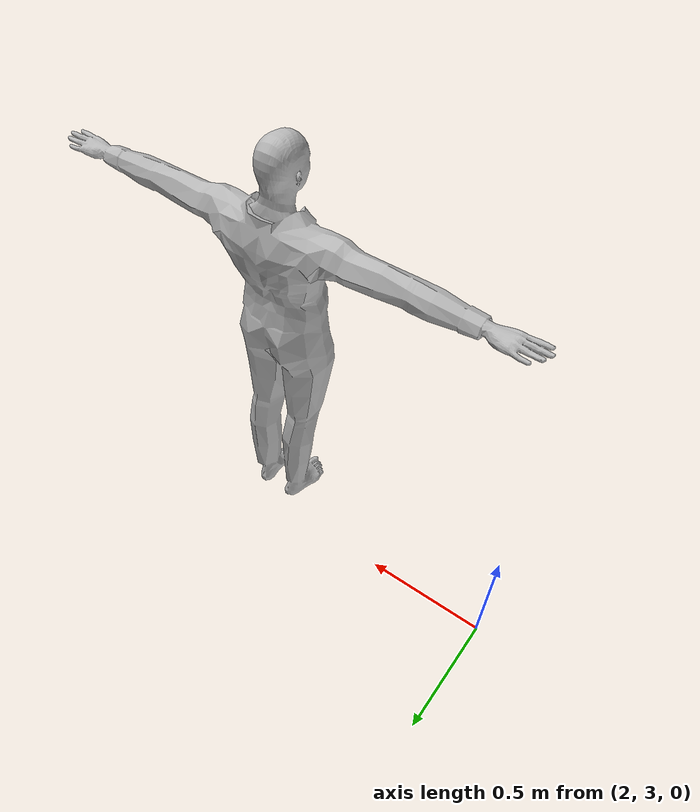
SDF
<?xml version="1.0" ?>
<sdf version="1.6">
  <model name="human1">
    <pose>3 3 1.05  0 0 0</pose>
    <static>false</static>
    <frame name="frame"/>
    <link name="link">
      <visual name="visual">
        <geometry>
          <mesh><uri>model://actor/meshes/SKIN_man_red_shirt.dae</uri></mesh>
        </geometry>
      </visual>
      <collision name="human_collision">
        <geometry>
          <box>
            <size>.3 .2 2.1</size>
          </box>
        </geometry>
        <surface>
      <friction>
        <ode><mu>0.001</mu><mu2>0.001</mu2></ode>
      </friction>
    </surface>
      </collision>
    </link>
    <plugin name="actor_plugin" filename="libactor_plugin.so">
    </plugin>
  </model>
</sdf>
